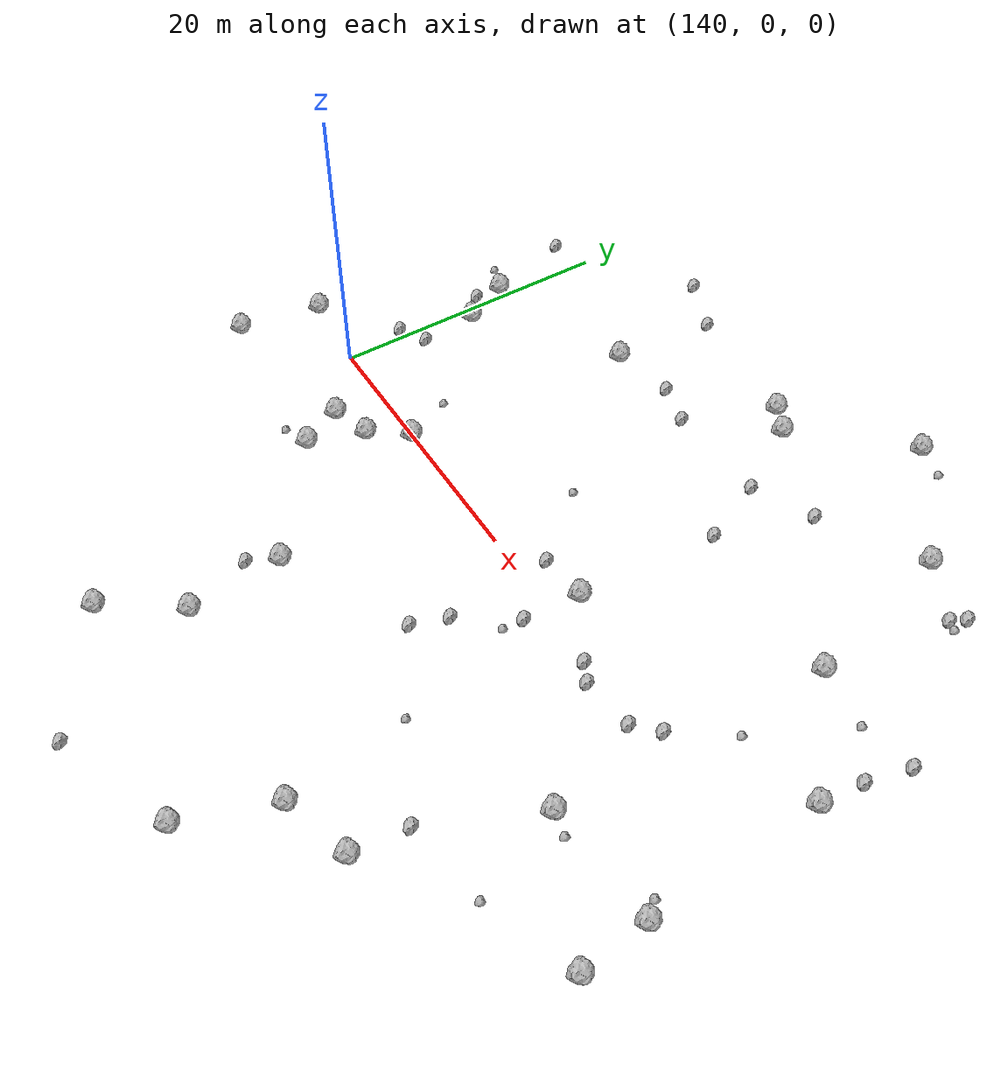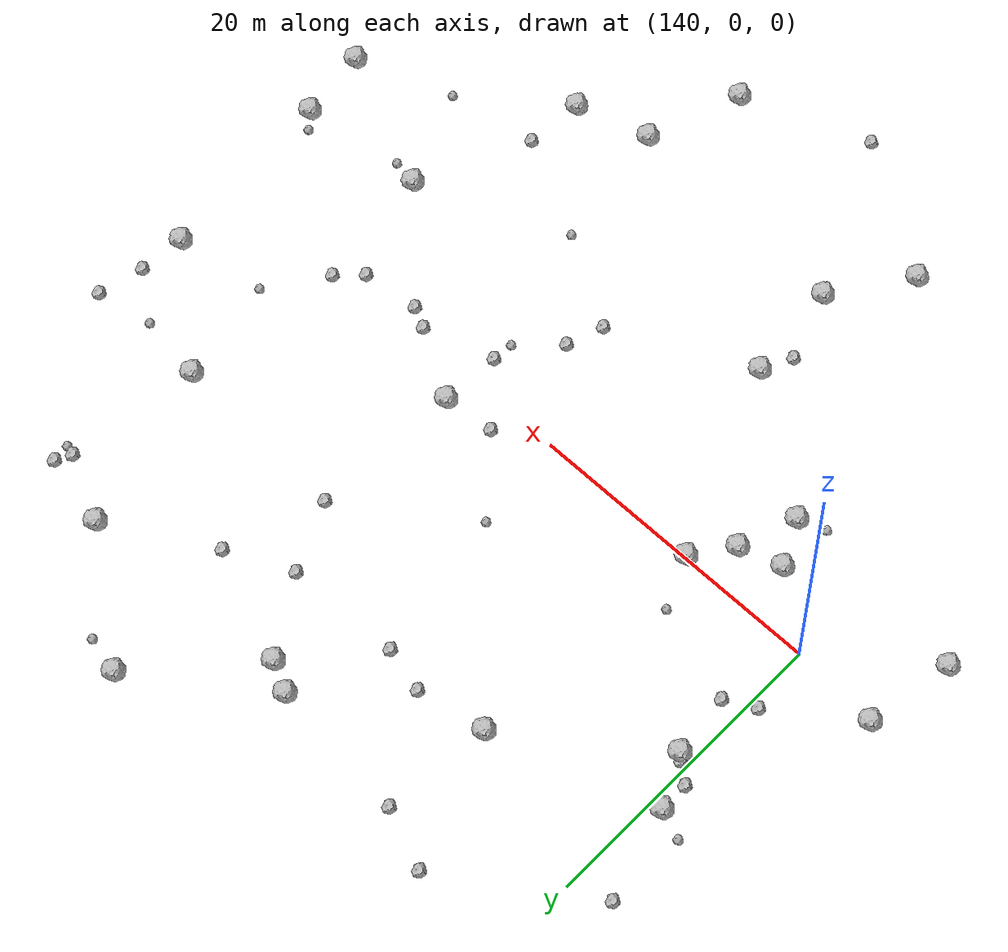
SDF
<sdf version="1.6">
 <world name="default">
  <include><uri>model://sun</uri></include>
  <model name="rock1_4_2">
   <include><uri>model://rock1</uri><pose>187.0663564700468 -6.7901466509966255 0.5 0 0 0</pose></include>
  </model>
  <model name="rock1_4_3">
   <include><uri>model://rock1</uri><pose>150.02295003202994 16.30681273754135 0.5 0 0 0</pose></include>
  </model>
  <model name="rock1_4_4">
   <include><uri>model://rock1</uri><pose>176.10741299126153 22.421885555027693 0.5 0 0 0</pose></include>
  </model>
  <model name="rock1_4_5">
   <include><uri>model://rock1</uri><pose>154.9075857140033 -18.960876956163702 0.5 0 0 0</pose></include>
  </model>
  <model name="rock1_4_6">
   <include><uri>model://rock1</uri><pose>178.76076504566367 -7.465241369905147 0.5 0 0 0</pose></include>
  </model>
  <model name="rock1_4_7">
   <include><uri>model://rock1</uri><pose>170.35830178497827 -19.96823037947403 0.5 0 0 0</pose></include>
  </model>
  <model name="rock1_4_8">
   <include><uri>model://rock1</uri><pose>154.23770574106695 -12.415892159800407 0.5 0 0 0</pose></include>
  </model>
  <model name="rock1_4_9">
   <include><uri>model://rock1</uri><pose>187.67624632632976 -11.484652529537811 0.5 0 0 0</pose></include>
  </model>
  <model name="rock1_4_10">
   <include><uri>model://rock1</uri><pose>175.1393472211874 -18.553396482405915 0.5 0 0 0</pose></include>
  </model>
  <model name="rock1_4_11">
   <include><uri>model://rock1</uri><pose>160.05813782167778 22.561545297652287 0.5 0 0 0</pose></include>
  </model>
  <model name="rock1_4_12">
   <include><uri>model://rock1</uri><pose>134.17439616019257 0.4878571459117822 0.5 0 0 0</pose></include>
  </model>
  <model name="rock1_4_13">
   <include><uri>model://rock1</uri><pose>144.43786293164666 -3.441899365853672 0.5 0 0 0</pose></include>
  </model>
  <model name="rock1_4_14">
   <include><uri>model://rock1</uri><pose>186.23004303360247 5.399910073454883 0.5 0 0 0</pose></include>
  </model>
  <model name="rock1_4_15">
   <include><uri>model://rock1</uri><pose>179.09917808090688 11.45621887438567 0.5 0 0 0</pose></include>
  </model>
  <model name="rock1_4_16">
   <include><uri>model://rock1</uri><pose>166.65164654005804 2.1354772547123133 0.5 0 0 0</pose></include>
  </model>
  <model name="rock1_4_17">
   <include><uri>model://rock1</uri><pose>133.1647967497233 -5.289201163441646 0.5 0 0 0</pose></include>
  </model>
  <model name="rock1_4_18">
   <include><uri>model://rock1</uri><pose>149.06756395671925 -0.04407052959160751 0.5 0 0 0</pose></include>
  </model>
  <model name="rock1_4_19">
   <include><uri>model://rock1</uri><pose>147.2394287506385 -2.5920812685383545 0.5 0 0 0</pose></include>
  </model>
  <model name="rock1_4_20">
   <include><uri>model://rock1</uri><pose>140.86681619309186 9.514659735555085 0.5 0 0 0</pose></include>
  </model>
  <model name="rock1_4_21">
   <include><uri>model://rock1</uri><pose>168.19234885891223 -26.145275460519432 0.5 0 0 0</pose></include>
  </model>
  <model name="rock1_4_22">
   <include><uri>model://rock1</uri><pose>139.2518163733567 12.83463184238012 0.5 0 0 0</pose></include>
  </model>
  <model name="rock1_4_23">
   <include><uri>model://rock1</uri><pose>151.52301153951115 -23.86835210064094 0.5 0 0 0</pose></include>
  </model>
  <model name="rock1_4_24">
   <include><uri>model://rock1</uri><pose>162.0087572351144 21.555651014451485 0.5 0 0 0</pose></include>
  </model>
  <model name="rock1_4_25">
   <include><uri>model://rock1</uri><pose>145.91386095612518 -6.372707219386143 0.5 0 0 0</pose></include>
  </model>
  <model name="rock1_4_26">
   <include><uri>model://rock1</uri><pose>168.28862573564675 28.465654532941386 0.5 0 0 0</pose></include>
  </model>
  <model name="rock2_4_0">
   <include><uri>model://rock2</uri><pose>141.34301662363956 5.372986053458845 0.3 0 0 0</pose></include>
  </model>
  <model name="rock2_4_1">
   <include><uri>model://rock2</uri><pose>187.1722393148974 11.463516423402318 0.3 0 0 0</pose></include>
  </model>
  <model name="rock2_4_2">
   <include><uri>model://rock2</uri><pose>137.48106109227686 18.896895220576283 0.3 0 0 0</pose></include>
  </model>
  <model name="rock2_4_3">
   <include><uri>model://rock2</uri><pose>153.27052734621105 -14.424162104865134 0.3 0 0 0</pose></include>
  </model>
  <model name="rock2_4_4">
   <include><uri>model://rock2</uri><pose>163.12169978655373 -8.043772846394994 0.3 0 0 0</pose></include>
  </model>
  <model name="rock2_4_5">
   <include><uri>model://rock2</uri><pose>159.91750503886033 -29.277741173255222 0.3 0 0 0</pose></include>
  </model>
  <model name="rock2_4_6">
   <include><uri>model://rock2</uri><pose>139.399902719527 4.330420798021898 0.3 0 0 0</pose></include>
  </model>
  <model name="rock2_4_7">
   <include><uri>model://rock2</uri><pose>180.2998393001502 20.277399939922134 0.3 0 0 0</pose></include>
  </model>
  <model name="rock2_4_8">
   <include><uri>model://rock2</uri><pose>139.25143605775756 10.8442199009557 0.3 0 0 0</pose></include>
  </model>
  <model name="rock2_4_9">
   <include><uri>model://rock2</uri><pose>176.19596117503067 -0.71792822225542 0.3 0 0 0</pose></include>
  </model>
  <model name="rock2_4_10">
   <include><uri>model://rock2</uri><pose>165.06498321519547 16.59719266061004 0.3 0 0 0</pose></include>
  </model>
  <model name="rock2_4_11">
   <include><uri>model://rock2</uri><pose>172.4454638153122 -1.1450428105024386 0.3 0 0 0</pose></include>
  </model>
  <model name="rock2_4_12">
   <include><uri>model://rock2</uri><pose>166.44841078629582 -1.8565388291693132 0.3 0 0 0</pose></include>
  </model>
  <model name="rock2_4_13">
   <include><uri>model://rock2</uri><pose>167.13585224839323 12.072621447124284 0.3 0 0 0</pose></include>
  </model>
  <model name="rock2_4_14">
   <include><uri>model://rock2</uri><pose>150.68714459613471 23.49295709671874 0.3 0 0 0</pose></include>
  </model>
  <model name="rock2_4_15">
   <include><uri>model://rock2</uri><pose>163.24945188841596 1.8016833490581803 0.3 0 0 0</pose></include>
  </model>
  <model name="rock2_4_16">
   <include><uri>model://rock2</uri><pose>177.68091717941135 0.7335904917004008 0.3 0 0 0</pose></include>
  </model>
  <model name="rock2_4_17">
   <include><uri>model://rock2</uri><pose>140.44444262801508 9.863099164595198 0.3 0 0 0</pose></include>
  </model>
  <model name="rock2_4_18">
   <include><uri>model://rock2</uri><pose>180.81199029232522 21.290166584114864 0.3 0 0 0</pose></include>
  </model>
  <model name="rock2_4_19">
   <include><uri>model://rock2</uri><pose>186.47798974277083 8.444096757311904 0.3 0 0 0</pose></include>
  </model>
  <model name="rock2_4_20">
   <include><uri>model://rock2</uri><pose>146.72827177286823 25.11656430604144 0.3 0 0 0</pose></include>
  </model>
  <model name="rock2_4_21">
   <include><uri>model://rock2</uri><pose>163.92341737887222 -5.62169137224538 0.3 0 0 0</pose></include>
  </model>
  <model name="rock2_4_22">
   <include><uri>model://rock2</uri><pose>157.5330364505114 16.353231460574996 0.3 0 0 0</pose></include>
  </model>
  <model name="rock2_4_23">
   <include><uri>model://rock2</uri><pose>154.57215487691025 17.12566852488368 0.3 0 0 0</pose></include>
  </model>
  <model name="rock2_4_24">
   <include><uri>model://rock2</uri><pose>171.08271665430908 -0.46289342073677275 0.3 0 0 0</pose></include>
  </model>
  <model name="rock2_4_25">
   <include><uri>model://rock2</uri><pose>169.28312897641084 18.556499190795762 0.3 0 0 0</pose></include>
  </model>
  <model name="rock2_4_26">
   <include><uri>model://rock2</uri><pose>175.4235095024223 -14.741152890141908 0.3 0 0 0</pose></include>
  </model>
  <model name="rock3_4_0">
   <include><uri>model://rock3</uri><pose>180.25315081425404 4.4325243533087075 0.2 0 0 0</pose></include>
  </model>
  <model name="rock3_4_1">
   <include><uri>model://rock3</uri><pose>144.08838832949527 -7.111734387824164 0.2 0 0 0</pose></include>
  </model>
  <model name="rock3_4_2">
   <include><uri>model://rock3</uri><pose>168.97148869599562 -11.537491093995623 0.2 0 0 0</pose></include>
  </model>
  <model name="rock3_4_3">
   <include><uri>model://rock3</uri><pose>180.39485002070597 -7.833845975900708 0.2 0 0 0</pose></include>
  </model>
  <model name="rock3_4_4">
   <include><uri>model://rock3</uri><pose>137.28191851872202 13.531009668226218 0.2 0 0 0</pose></include>
  </model>
  <model name="rock3_4_5">
   <include><uri>model://rock3</uri><pose>159.1884264246847 6.414775938868814 0.2 0 0 0</pose></include>
  </model>
  <model name="rock3_4_6">
   <include><uri>model://rock3</uri><pose>186.12627070045886 -5.771401465228692 0.2 0 0 0</pose></include>
  </model>
  <model name="rock3_4_7">
   <include><uri>model://rock3</uri><pose>166.3330861913883 -3.3237940441405485 0.2 0 0 0</pose></include>
  </model>
  <model name="rock3_4_8">
   <include><uri>model://rock3</uri><pose>183.40856160357012 10.749210986725416 0.2 0 0 0</pose></include>
  </model>
  <model name="rock3_4_9">
   <include><uri>model://rock3</uri><pose>147.54038839993837 3.261818867700633 0.2 0 0 0</pose></include>
  </model>
  <model name="rock3_4_10">
   <include><uri>model://rock3</uri><pose>170.66969914166626 27.83232316808713 0.2 0 0 0</pose></include>
  </model>
  <model name="rock3_4_11">
   <include><uri>model://rock3</uri><pose>180.9542055746191 20.04922955134665 0.2 0 0 0</pose></include>
  </model>
  <model name="rock3_4_12">
   <include><uri>model://rock3</uri><pose>181.3049368936219 -13.808284137820017 0.2 0 0 0</pose></include>
  </model>
 </world>
</sdf>
